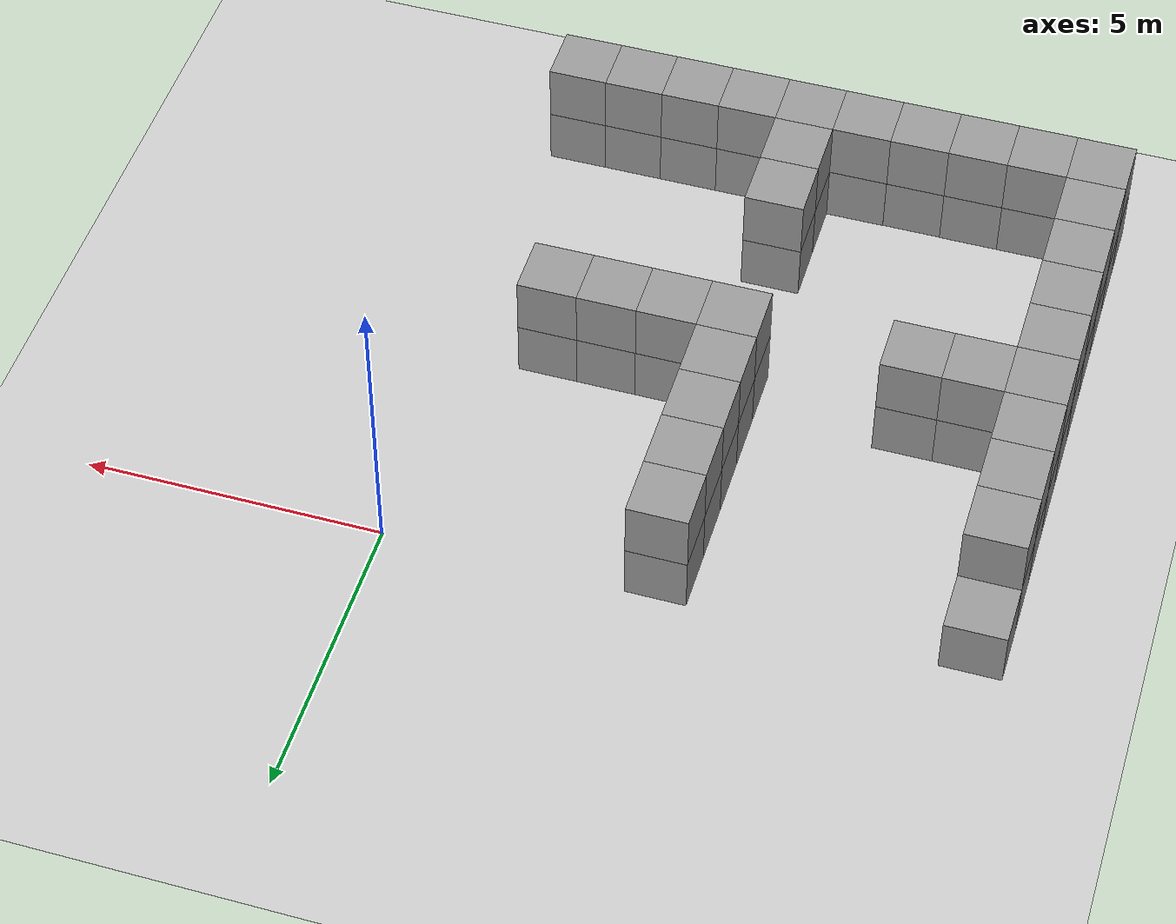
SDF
<sdf version="1.7">
 <world name="default">
  <model name="ground_plane">
   <static>1</static>
   <link name="link">
    <collision name="collision">
     <geometry><plane><normal>0 0 1</normal><size>100 100</size></plane></geometry>
     <surface>
      <contact><collide_bitmask>65535</collide_bitmask></contact>
      <friction><ode><mu>100</mu><mu2>50</mu2></ode></friction>
     </surface>
    </collision>
    <visual name="visual">
     <cast_shadows>0</cast_shadows>
     <geometry><plane><normal>0 0 1</normal><size>100 100</size></plane></geometry>
     <material>
      <script><uri>file://media/materials/scripts/gazebo.material</uri><name>Gazebo/Grey</name></script>
     </material>
    </visual>
   </link>
  </model>
  <model name="unit_box_clone_7_clone_18_clone_3_clone_clone_3_clone_5">
   <pose>-4.5 -0.5 0.5 0 -0 0</pose>
   <link name="link">
    <inertial>
     <mass>1</mass>
     <inertia>
      <ixx>0.166667</ixx>
      <ixy>0</ixy>
      <ixz>0</ixz>
      <iyy>0.166667</iyy>
      <iyz>0</iyz>
      <izz>0.166667</izz>
     </inertia>
    </inertial>
    <collision name="collision"><geometry><box><size>1 1 1</size></box></geometry></collision>
    <visual name="visual">
     <geometry><box><size>1 1 1</size></box></geometry>
     <material>
      <script><name>Gazebo/Grey</name><uri>file://media/materials/scripts/gazebo.material</uri></script>
     </material>
    </visual>
   </link>
  </model>
  <model name="unit_box_clone_7_clone_18_clone_3_clone_clone_3_clone_6">
   <pose>-4.5 -1.5 0.5 0 -0 0</pose>
   <link name="link">
    <inertial>
     <mass>1</mass>
     <inertia>
      <ixx>0.166667</ixx>
      <ixy>0</ixy>
      <ixz>0</ixz>
      <iyy>0.166667</iyy>
      <iyz>0</iyz>
      <izz>0.166667</izz>
     </inertia>
    </inertial>
    <collision name="collision"><geometry><box><size>1 1 1</size></box></geometry></collision>
    <visual name="visual">
     <geometry><box><size>1 1 1</size></box></geometry>
     <material>
      <script><name>Gazebo/Grey</name><uri>file://media/materials/scripts/gazebo.material</uri></script>
     </material>
    </visual>
   </link>
  </model>
  <model name="unit_box_clone_7_clone_18_clone_3_clone_clone_3_clone_7">
   <pose>-4.5 -2.5 0.5 0 -0 0</pose>
   <link name="link">
    <inertial>
     <mass>1</mass>
     <inertia>
      <ixx>0.166667</ixx>
      <ixy>0</ixy>
      <ixz>0</ixz>
      <iyy>0.166667</iyy>
      <iyz>0</iyz>
      <izz>0.166667</izz>
     </inertia>
    </inertial>
    <collision name="collision"><geometry><box><size>1 1 1</size></box></geometry></collision>
    <visual name="visual">
     <geometry><box><size>1 1 1</size></box></geometry>
     <material>
      <script><name>Gazebo/Grey</name><uri>file://media/materials/scripts/gazebo.material</uri></script>
     </material>
    </visual>
   </link>
  </model>
  <model name="unit_box_clone_7_clone_18_clone_3_clone_clone_3_clone_8">
   <pose>-4.5 -3.5 0.5 0 -0 0</pose>
   <link name="link">
    <inertial>
     <mass>1</mass>
     <inertia>
      <ixx>0.166667</ixx>
      <ixy>0</ixy>
      <ixz>0</ixz>
      <iyy>0.166667</iyy>
      <iyz>0</iyz>
      <izz>0.166667</izz>
     </inertia>
    </inertial>
    <collision name="collision"><geometry><box><size>1 1 1</size></box></geometry></collision>
    <visual name="visual">
     <geometry><box><size>1 1 1</size></box></geometry>
     <material>
      <script><name>Gazebo/Grey</name><uri>file://media/materials/scripts/gazebo.material</uri></script>
     </material>
    </visual>
   </link>
  </model>
  <model name="unit_box_clone_7_clone_18_clone_3_clone_clone_3_clone_9">
   <pose>-4.5 -4.5 0.5 0 -0 0</pose>
   <link name="link">
    <inertial>
     <mass>1</mass>
     <inertia>
      <ixx>0.166667</ixx>
      <ixy>0</ixy>
      <ixz>0</ixz>
      <iyy>0.166667</iyy>
      <iyz>0</iyz>
      <izz>0.166667</izz>
     </inertia>
    </inertial>
    <collision name="collision"><geometry><box><size>1 1 1</size></box></geometry></collision>
    <visual name="visual">
     <geometry><box><size>1 1 1</size></box></geometry>
     <material>
      <script><name>Gazebo/Grey</name><uri>file://media/materials/scripts/gazebo.material</uri></script>
     </material>
    </visual>
   </link>
  </model>
  <model name="unit_box_clone_7_clone_18_clone_3_clone_clone_3_clone_9_clone">
   <pose>-3.5 -4.5 0.5 0 -0 0</pose>
   <link name="link">
    <inertial>
     <mass>1</mass>
     <inertia>
      <ixx>0.166667</ixx>
      <ixy>0</ixy>
      <ixz>0</ixz>
      <iyy>0.166667</iyy>
      <iyz>0</iyz>
      <izz>0.166667</izz>
     </inertia>
    </inertial>
    <collision name="collision"><geometry><box><size>1 1 1</size></box></geometry></collision>
    <visual name="visual">
     <geometry><box><size>1 1 1</size></box></geometry>
     <material>
      <script><name>Gazebo/Grey</name><uri>file://media/materials/scripts/gazebo.material</uri></script>
     </material>
    </visual>
   </link>
  </model>
  <model name="unit_box_clone_7_clone_18_clone_3_clone_clone_3_clone_9_clone_0">
   <pose>-2.5 -4.5 0.5 0 -0 0</pose>
   <link name="link">
    <inertial>
     <mass>1</mass>
     <inertia>
      <ixx>0.166667</ixx>
      <ixy>0</ixy>
      <ixz>0</ixz>
      <iyy>0.166667</iyy>
      <iyz>0</iyz>
      <izz>0.166667</izz>
     </inertia>
    </inertial>
    <collision name="collision"><geometry><box><size>1 1 1</size></box></geometry></collision>
    <visual name="visual">
     <geometry><box><size>1 1 1</size></box></geometry>
     <material>
      <script><name>Gazebo/Grey</name><uri>file://media/materials/scripts/gazebo.material</uri></script>
     </material>
    </visual>
   </link>
  </model>
  <model name="unit_box_clone_7_clone_18_clone_3_clone_clone_3_clone_9_clone_1">
   <pose>-1.5 -4.5 0.5 0 -0 0</pose>
   <link name="link">
    <inertial>
     <mass>1</mass>
     <inertia>
      <ixx>0.166667</ixx>
      <ixy>0</ixy>
      <ixz>0</ixz>
      <iyy>0.166667</iyy>
      <iyz>0</iyz>
      <izz>0.166667</izz>
     </inertia>
    </inertial>
    <collision name="collision"><geometry><box><size>1 1 1</size></box></geometry></collision>
    <visual name="visual">
     <geometry><box><size>1 1 1</size></box></geometry>
     <material>
      <script><name>Gazebo/Grey</name><uri>file://media/materials/scripts/gazebo.material</uri></script>
     </material>
    </visual>
   </link>
  </model>
  <model name="unit_box_clone_0_clone_clone_26_clone_2_clone_1_clone_0_clone_5">
   <pose>-4.5 -0.5 1.5 0 -0 0</pose>
   <link name="link">
    <inertial>
     <mass>1</mass>
     <inertia>
      <ixx>0.166667</ixx>
      <ixy>0</ixy>
      <ixz>0</ixz>
      <iyy>0.166667</iyy>
      <iyz>0</iyz>
      <izz>0.166667</izz>
     </inertia>
    </inertial>
    <collision name="collision"><geometry><box><size>1 1 1</size></box></geometry></collision>
    <visual name="visual">
     <geometry><box><size>1 1 1</size></box></geometry>
     <material>
      <script><name>Gazebo/Grey</name><uri>file://media/materials/scripts/gazebo.material</uri></script>
     </material>
    </visual>
   </link>
  </model>
  <model name="unit_box_clone_0_clone_clone_26_clone_2_clone_1_clone_0_clone_6">
   <pose>-4.5 -1.5 1.5 0 -0 0</pose>
   <link name="link">
    <inertial>
     <mass>1</mass>
     <inertia>
      <ixx>0.166667</ixx>
      <ixy>0</ixy>
      <ixz>0</ixz>
      <iyy>0.166667</iyy>
      <iyz>0</iyz>
      <izz>0.166667</izz>
     </inertia>
    </inertial>
    <collision name="collision"><geometry><box><size>1 1 1</size></box></geometry></collision>
    <visual name="visual">
     <geometry><box><size>1 1 1</size></box></geometry>
     <material>
      <script><name>Gazebo/Grey</name><uri>file://media/materials/scripts/gazebo.material</uri></script>
     </material>
    </visual>
   </link>
  </model>
  <model name="unit_box_clone_0_clone_clone_26_clone_2_clone_1_clone_0_clone_7">
   <pose>-4.5 -2.5 1.5 0 -0 0</pose>
   <link name="link">
    <inertial>
     <mass>1</mass>
     <inertia>
      <ixx>0.166667</ixx>
      <ixy>0</ixy>
      <ixz>0</ixz>
      <iyy>0.166667</iyy>
      <iyz>0</iyz>
      <izz>0.166667</izz>
     </inertia>
    </inertial>
    <collision name="collision"><geometry><box><size>1 1 1</size></box></geometry></collision>
    <visual name="visual">
     <geometry><box><size>1 1 1</size></box></geometry>
     <material>
      <script><name>Gazebo/Grey</name><uri>file://media/materials/scripts/gazebo.material</uri></script>
     </material>
    </visual>
   </link>
  </model>
  <model name="unit_box_clone_0_clone_clone_26_clone_2_clone_1_clone_0_clone_8">
   <pose>-4.5 -3.5 1.5 0 -0 0</pose>
   <link name="link">
    <inertial>
     <mass>1</mass>
     <inertia>
      <ixx>0.166667</ixx>
      <ixy>0</ixy>
      <ixz>0</ixz>
      <iyy>0.166667</iyy>
      <iyz>0</iyz>
      <izz>0.166667</izz>
     </inertia>
    </inertial>
    <collision name="collision"><geometry><box><size>1 1 1</size></box></geometry></collision>
    <visual name="visual">
     <geometry><box><size>1 1 1</size></box></geometry>
     <material>
      <script><name>Gazebo/Grey</name><uri>file://media/materials/scripts/gazebo.material</uri></script>
     </material>
    </visual>
   </link>
  </model>
  <model name="unit_box_clone_0_clone_clone_26_clone_2_clone_1_clone_0_clone_9">
   <pose>-4.5 -4.5 1.5 0 -0 0</pose>
   <link name="link">
    <inertial>
     <mass>1</mass>
     <inertia>
      <ixx>0.166667</ixx>
      <ixy>0</ixy>
      <ixz>0</ixz>
      <iyy>0.166667</iyy>
      <iyz>0</iyz>
      <izz>0.166667</izz>
     </inertia>
    </inertial>
    <collision name="collision"><geometry><box><size>1 1 1</size></box></geometry></collision>
    <visual name="visual">
     <geometry><box><size>1 1 1</size></box></geometry>
     <material>
      <script><name>Gazebo/Grey</name><uri>file://media/materials/scripts/gazebo.material</uri></script>
     </material>
    </visual>
   </link>
  </model>
  <model name="unit_box_clone_0_clone_clone_26_clone_2_clone_1_clone_0_clone_10">
   <pose>-3.5 -4.5 1.5 0 -0 0</pose>
   <link name="link">
    <inertial>
     <mass>1</mass>
     <inertia>
      <ixx>0.166667</ixx>
      <ixy>0</ixy>
      <ixz>0</ixz>
      <iyy>0.166667</iyy>
      <iyz>0</iyz>
      <izz>0.166667</izz>
     </inertia>
    </inertial>
    <collision name="collision"><geometry><box><size>1 1 1</size></box></geometry></collision>
    <visual name="visual">
     <geometry><box><size>1 1 1</size></box></geometry>
     <material>
      <script><name>Gazebo/Grey</name><uri>file://media/materials/scripts/gazebo.material</uri></script>
     </material>
    </visual>
   </link>
  </model>
  <model name="unit_box_clone_0_clone_clone_26_clone_2_clone_1_clone_0_clone_11">
   <pose>-2.5 -4.5 1.5 0 -0 0</pose>
   <link name="link">
    <inertial>
     <mass>1</mass>
     <inertia>
      <ixx>0.166667</ixx>
      <ixy>0</ixy>
      <ixz>0</ixz>
      <iyy>0.166667</iyy>
      <iyz>0</iyz>
      <izz>0.166667</izz>
     </inertia>
    </inertial>
    <collision name="collision"><geometry><box><size>1 1 1</size></box></geometry></collision>
    <visual name="visual">
     <geometry><box><size>1 1 1</size></box></geometry>
     <material>
      <script><name>Gazebo/Grey</name><uri>file://media/materials/scripts/gazebo.material</uri></script>
     </material>
    </visual>
   </link>
  </model>
  <model name="unit_box_clone_0_clone_clone_26_clone_2_clone_1_clone_0_clone_12">
   <pose>-1.5 -4.5 1.5 0 -0 0</pose>
   <link name="link">
    <inertial>
     <mass>1</mass>
     <inertia>
      <ixx>0.166667</ixx>
      <ixy>0</ixy>
      <ixz>0</ixz>
      <iyy>0.166667</iyy>
      <iyz>0</iyz>
      <izz>0.166667</izz>
     </inertia>
    </inertial>
    <collision name="collision"><geometry><box><size>1 1 1</size></box></geometry></collision>
    <visual name="visual">
     <geometry><box><size>1 1 1</size></box></geometry>
     <material>
      <script><name>Gazebo/Grey</name><uri>file://media/materials/scripts/gazebo.material</uri></script>
     </material>
    </visual>
   </link>
  </model>
  <model name="unit_box_clone_7_clone_9_clone_15">
   <pose>-9.5 -0.5 0.5 0 -0 0</pose>
   <link name="link">
    <inertial>
     <mass>1</mass>
     <inertia>
      <ixx>0.166667</ixx>
      <ixy>0</ixy>
      <ixz>0</ixz>
      <iyy>0.166667</iyy>
      <iyz>0</iyz>
      <izz>0.166667</izz>
     </inertia>
    </inertial>
    <collision name="collision"><geometry><box><size>1 1 1</size></box></geometry></collision>
    <visual name="visual">
     <geometry><box><size>1 1 1</size></box></geometry>
     <material>
      <script><name>Gazebo/Grey</name><uri>file://media/materials/scripts/gazebo.material</uri></script>
     </material>
    </visual>
   </link>
  </model>
  <model name="unit_box_clone_7_clone_9_clone_16">
   <pose>-9.5 -1.5 0.5 0 -0 0</pose>
   <link name="link">
    <inertial>
     <mass>1</mass>
     <inertia>
      <ixx>0.166667</ixx>
      <ixy>0</ixy>
      <ixz>0</ixz>
      <iyy>0.166667</iyy>
      <iyz>0</iyz>
      <izz>0.166667</izz>
     </inertia>
    </inertial>
    <collision name="collision"><geometry><box><size>1 1 1</size></box></geometry></collision>
    <visual name="visual">
     <geometry><box><size>1 1 1</size></box></geometry>
     <material>
      <script><name>Gazebo/Grey</name><uri>file://media/materials/scripts/gazebo.material</uri></script>
     </material>
    </visual>
   </link>
  </model>
  <model name="unit_box_clone_7_clone_9_clone_17">
   <pose>-9.5 -2.5 0.5 0 -0 0</pose>
   <link name="link">
    <inertial>
     <mass>1</mass>
     <inertia>
      <ixx>0.166667</ixx>
      <ixy>0</ixy>
      <ixz>0</ixz>
      <iyy>0.166667</iyy>
      <iyz>0</iyz>
      <izz>0.166667</izz>
     </inertia>
    </inertial>
    <collision name="collision"><geometry><box><size>1 1 1</size></box></geometry></collision>
    <visual name="visual">
     <geometry><box><size>1 1 1</size></box></geometry>
     <material>
      <script><name>Gazebo/Grey</name><uri>file://media/materials/scripts/gazebo.material</uri></script>
     </material>
    </visual>
   </link>
  </model>
  <model name="unit_box_clone_7_clone_9_clone_18">
   <pose>-9.5 -3.5 0.5 0 -0 0</pose>
   <link name="link">
    <inertial>
     <mass>1</mass>
     <inertia>
      <ixx>0.166667</ixx>
      <ixy>0</ixy>
      <ixz>0</ixz>
      <iyy>0.166667</iyy>
      <iyz>0</iyz>
      <izz>0.166667</izz>
     </inertia>
    </inertial>
    <collision name="collision"><geometry><box><size>1 1 1</size></box></geometry></collision>
    <visual name="visual">
     <geometry><box><size>1 1 1</size></box></geometry>
     <material>
      <script><name>Gazebo/Grey</name><uri>file://media/materials/scripts/gazebo.material</uri></script>
     </material>
    </visual>
   </link>
  </model>
  <model name="unit_box_clone_7_clone_9_clone_19">
   <pose>-9.5 -4.5 0.5 0 -0 0</pose>
   <link name="link">
    <inertial>
     <mass>1</mass>
     <inertia>
      <ixx>0.166667</ixx>
      <ixy>0</ixy>
      <ixz>0</ixz>
      <iyy>0.166667</iyy>
      <iyz>0</iyz>
      <izz>0.166667</izz>
     </inertia>
    </inertial>
    <collision name="collision"><geometry><box><size>1 1 1</size></box></geometry></collision>
    <visual name="visual">
     <geometry><box><size>1 1 1</size></box></geometry>
     <material>
      <script><name>Gazebo/Grey</name><uri>file://media/materials/scripts/gazebo.material</uri></script>
     </material>
    </visual>
   </link>
  </model>
  <model name="unit_box_clone_7_clone_9_clone_20">
   <pose>-9.5 -5.5 0.5 0 -0 0</pose>
   <link name="link">
    <inertial>
     <mass>1</mass>
     <inertia>
      <ixx>0.166667</ixx>
      <ixy>0</ixy>
      <ixz>0</ixz>
      <iyy>0.166667</iyy>
      <iyz>0</iyz>
      <izz>0.166667</izz>
     </inertia>
    </inertial>
    <collision name="collision"><geometry><box><size>1 1 1</size></box></geometry></collision>
    <visual name="visual">
     <geometry><box><size>1 1 1</size></box></geometry>
     <material>
      <script><name>Gazebo/Grey</name><uri>file://media/materials/scripts/gazebo.material</uri></script>
     </material>
    </visual>
   </link>
  </model>
  <model name="unit_box_clone_7_clone_9_clone_21">
   <pose>-8.5 -4.5 0.5 0 -0 0</pose>
   <link name="link">
    <inertial>
     <mass>1</mass>
     <inertia>
      <ixx>0.166667</ixx>
      <ixy>0</ixy>
      <ixz>0</ixz>
      <iyy>0.166667</iyy>
      <iyz>0</iyz>
      <izz>0.166667</izz>
     </inertia>
    </inertial>
    <collision name="collision"><geometry><box><size>1 1 1</size></box></geometry></collision>
    <visual name="visual">
     <geometry><box><size>1 1 1</size></box></geometry>
     <material>
      <script><name>Gazebo/Grey</name><uri>file://media/materials/scripts/gazebo.material</uri></script>
     </material>
    </visual>
   </link>
  </model>
  <model name="unit_box_clone_7_clone_9_clone_22">
   <pose>-7.5 -4.5 0.5 0 -0 0</pose>
   <link name="link">
    <inertial>
     <mass>1</mass>
     <inertia>
      <ixx>0.166667</ixx>
      <ixy>0</ixy>
      <ixz>0</ixz>
      <iyy>0.166667</iyy>
      <iyz>0</iyz>
      <izz>0.166667</izz>
     </inertia>
    </inertial>
    <collision name="collision"><geometry><box><size>1 1 1</size></box></geometry></collision>
    <visual name="visual">
     <geometry><box><size>1 1 1</size></box></geometry>
     <material>
      <script><name>Gazebo/Grey</name><uri>file://media/materials/scripts/gazebo.material</uri></script>
     </material>
    </visual>
   </link>
  </model>
  <model name="unit_box_clone_7_clone_9_clone_24">
   <pose>-9.5 -6.5 0.5 0 -0 0</pose>
   <link name="link">
    <inertial>
     <mass>1</mass>
     <inertia>
      <ixx>0.166667</ixx>
      <ixy>0</ixy>
      <ixz>0</ixz>
      <iyy>0.166667</iyy>
      <iyz>0</iyz>
      <izz>0.166667</izz>
     </inertia>
    </inertial>
    <collision name="collision"><geometry><box><size>1 1 1</size></box></geometry></collision>
    <visual name="visual">
     <geometry><box><size>1 1 1</size></box></geometry>
     <material>
      <script><name>Gazebo/Grey</name><uri>file://media/materials/scripts/gazebo.material</uri></script>
     </material>
    </visual>
   </link>
  </model>
  <model name="unit_box_clone_7_clone_9_clone_25">
   <pose>-9.5 -7.5 0.5 0 -0 0</pose>
   <link name="link">
    <inertial>
     <mass>1</mass>
     <inertia>
      <ixx>0.166667</ixx>
      <ixy>0</ixy>
      <ixz>0</ixz>
      <iyy>0.166667</iyy>
      <iyz>0</iyz>
      <izz>0.166667</izz>
     </inertia>
    </inertial>
    <collision name="collision"><geometry><box><size>1 1 1</size></box></geometry></collision>
    <visual name="visual">
     <geometry><box><size>1 1 1</size></box></geometry>
     <material>
      <script><name>Gazebo/Grey</name><uri>file://media/materials/scripts/gazebo.material</uri></script>
     </material>
    </visual>
   </link>
  </model>
  <model name="unit_box_clone_7_clone_9_clone_26">
   <pose>-9.5 -8.5 0.5 0 -0 0</pose>
   <link name="link">
    <inertial>
     <mass>1</mass>
     <inertia>
      <ixx>0.166667</ixx>
      <ixy>0</ixy>
      <ixz>0</ixz>
      <iyy>0.166667</iyy>
      <iyz>0</iyz>
      <izz>0.166667</izz>
     </inertia>
    </inertial>
    <collision name="collision"><geometry><box><size>1 1 1</size></box></geometry></collision>
    <visual name="visual">
     <geometry><box><size>1 1 1</size></box></geometry>
     <material>
      <script><name>Gazebo/Grey</name><uri>file://media/materials/scripts/gazebo.material</uri></script>
     </material>
    </visual>
   </link>
  </model>
  <model name="unit_box_clone_7_clone_9_clone_27">
   <pose>-9.5 -9.5 0.5 0 -0 0</pose>
   <link name="link">
    <inertial>
     <mass>1</mass>
     <inertia>
      <ixx>0.166667</ixx>
      <ixy>0</ixy>
      <ixz>0</ixz>
      <iyy>0.166667</iyy>
      <iyz>0</iyz>
      <izz>0.166667</izz>
     </inertia>
    </inertial>
    <collision name="collision"><geometry><box><size>1 1 1</size></box></geometry></collision>
    <visual name="visual">
     <geometry><box><size>1 1 1</size></box></geometry>
     <material>
      <script><name>Gazebo/Grey</name><uri>file://media/materials/scripts/gazebo.material</uri></script>
     </material>
    </visual>
   </link>
  </model>
  <model name="unit_box_clone_7_clone_9_clone_28">
   <pose>-8.5 -9.5 0.5 0 -0 0</pose>
   <link name="link">
    <inertial>
     <mass>1</mass>
     <inertia>
      <ixx>0.166667</ixx>
      <ixy>0</ixy>
      <ixz>0</ixz>
      <iyy>0.166667</iyy>
      <iyz>0</iyz>
      <izz>0.166667</izz>
     </inertia>
    </inertial>
    <collision name="collision"><geometry><box><size>1 1 1</size></box></geometry></collision>
    <visual name="visual">
     <geometry><box><size>1 1 1</size></box></geometry>
     <material>
      <script><name>Gazebo/Grey</name><uri>file://media/materials/scripts/gazebo.material</uri></script>
     </material>
    </visual>
   </link>
  </model>
  <model name="unit_box_clone_7_clone_9_clone_29">
   <pose>-7.5 -9.5 0.5 0 -0 0</pose>
   <link name="link">
    <inertial>
     <mass>1</mass>
     <inertia>
      <ixx>0.166667</ixx>
      <ixy>0</ixy>
      <ixz>0</ixz>
      <iyy>0.166667</iyy>
      <iyz>0</iyz>
      <izz>0.166667</izz>
     </inertia>
    </inertial>
    <collision name="collision"><geometry><box><size>1 1 1</size></box></geometry></collision>
    <visual name="visual">
     <geometry><box><size>1 1 1</size></box></geometry>
     <material>
      <script><name>Gazebo/Grey</name><uri>file://media/materials/scripts/gazebo.material</uri></script>
     </material>
    </visual>
   </link>
  </model>
  <model name="unit_box_clone_7_clone_9_clone_30">
   <pose>-6.5 -9.5067 0.5 0 -0 0</pose>
   <link name="link">
    <inertial>
     <mass>1</mass>
     <inertia>
      <ixx>0.166667</ixx>
      <ixy>0</ixy>
      <ixz>0</ixz>
      <iyy>0.166667</iyy>
      <iyz>0</iyz>
      <izz>0.166667</izz>
     </inertia>
    </inertial>
    <collision name="collision"><geometry><box><size>1 1 1</size></box></geometry></collision>
    <visual name="visual">
     <geometry><box><size>1 1 1</size></box></geometry>
     <material>
      <script><name>Gazebo/Grey</name><uri>file://media/materials/scripts/gazebo.material</uri></script>
     </material>
    </visual>
   </link>
  </model>
  <model name="unit_box_clone_7_clone_9_clone_31">
   <pose>-5.5 -9.5 0.5 0 -0 0</pose>
   <link name="link">
    <inertial>
     <mass>1</mass>
     <inertia>
      <ixx>0.166667</ixx>
      <ixy>0</ixy>
      <ixz>0</ixz>
      <iyy>0.166667</iyy>
      <iyz>0</iyz>
      <izz>0.166667</izz>
     </inertia>
    </inertial>
    <collision name="collision"><geometry><box><size>1 1 1</size></box></geometry></collision>
    <visual name="visual">
     <geometry><box><size>1 1 1</size></box></geometry>
     <material>
      <script><name>Gazebo/Grey</name><uri>file://media/materials/scripts/gazebo.material</uri></script>
     </material>
    </visual>
   </link>
  </model>
  <model name="unit_box_clone_7_clone_9_clone_34">
   <pose>-4.5 -8.5 0.5 0 -0 0</pose>
   <link name="link">
    <inertial>
     <mass>1</mass>
     <inertia>
      <ixx>0.166667</ixx>
      <ixy>0</ixy>
      <ixz>0</ixz>
      <iyy>0.166667</iyy>
      <iyz>0</iyz>
      <izz>0.166667</izz>
     </inertia>
    </inertial>
    <collision name="collision"><geometry><box><size>1 1 1</size></box></geometry></collision>
    <visual name="visual">
     <geometry><box><size>1 1 1</size></box></geometry>
     <material>
      <script><name>Gazebo/Grey</name><uri>file://media/materials/scripts/gazebo.material</uri></script>
     </material>
    </visual>
   </link>
  </model>
  <model name="unit_box_clone_7_clone_9_clone_35">
   <pose>-4.5 -7.5 0.5 0 -0 0</pose>
   <link name="link">
    <inertial>
     <mass>1</mass>
     <inertia>
      <ixx>0.166667</ixx>
      <ixy>0</ixy>
      <ixz>0</ixz>
      <iyy>0.166667</iyy>
      <iyz>0</iyz>
      <izz>0.166667</izz>
     </inertia>
    </inertial>
    <collision name="collision"><geometry><box><size>1 1 1</size></box></geometry></collision>
    <visual name="visual">
     <geometry><box><size>1 1 1</size></box></geometry>
     <material>
      <script><name>Gazebo/Grey</name><uri>file://media/materials/scripts/gazebo.material</uri></script>
     </material>
    </visual>
   </link>
  </model>
  <model name="unit_box_clone_7_clone_9_clone_36">
   <pose>-4.5 -9.5 0.5 0 -0 0</pose>
   <link name="link">
    <inertial>
     <mass>1</mass>
     <inertia>
      <ixx>0.166667</ixx>
      <ixy>0</ixy>
      <ixz>0</ixz>
      <iyy>0.166667</iyy>
      <iyz>0</iyz>
      <izz>0.166667</izz>
     </inertia>
    </inertial>
    <collision name="collision"><geometry><box><size>1 1 1</size></box></geometry></collision>
    <visual name="visual">
     <geometry><box><size>1 1 1</size></box></geometry>
     <material>
      <script><name>Gazebo/Grey</name><uri>file://media/materials/scripts/gazebo.material</uri></script>
     </material>
    </visual>
   </link>
  </model>
  <model name="unit_box_clone_7_clone_9_clone_34_clone">
   <pose>-3.5 -9.5 0.5 0 -0 0</pose>
   <link name="link">
    <inertial>
     <mass>1</mass>
     <inertia>
      <ixx>0.166667</ixx>
      <ixy>0</ixy>
      <ixz>0</ixz>
      <iyy>0.166667</iyy>
      <iyz>0</iyz>
      <izz>0.166667</izz>
     </inertia>
    </inertial>
    <collision name="collision"><geometry><box><size>1 1 1</size></box></geometry></collision>
    <visual name="visual">
     <geometry><box><size>1 1 1</size></box></geometry>
     <material>
      <script><name>Gazebo/Grey</name><uri>file://media/materials/scripts/gazebo.material</uri></script>
     </material>
    </visual>
   </link>
  </model>
  <model name="unit_box_clone_7_clone_9_clone_34_clone_0">
   <pose>-2.5 -9.5 0.5 0 -0 0</pose>
   <link name="link">
    <inertial>
     <mass>1</mass>
     <inertia>
      <ixx>0.166667</ixx>
      <ixy>0</ixy>
      <ixz>0</ixz>
      <iyy>0.166667</iyy>
      <iyz>0</iyz>
      <izz>0.166667</izz>
     </inertia>
    </inertial>
    <collision name="collision"><geometry><box><size>1 1 1</size></box></geometry></collision>
    <visual name="visual">
     <geometry><box><size>1 1 1</size></box></geometry>
     <material>
      <script><name>Gazebo/Grey</name><uri>file://media/materials/scripts/gazebo.material</uri></script>
     </material>
    </visual>
   </link>
  </model>
  <model name="unit_box_clone_7_clone_9_clone_34_clone_1">
   <pose>-1.5 -9.5 0.5 0 -0 0</pose>
   <link name="link">
    <inertial>
     <mass>1</mass>
     <inertia>
      <ixx>0.166667</ixx>
      <ixy>0</ixy>
      <ixz>0</ixz>
      <iyy>0.166667</iyy>
      <iyz>0</iyz>
      <izz>0.166667</izz>
     </inertia>
    </inertial>
    <collision name="collision"><geometry><box><size>1 1 1</size></box></geometry></collision>
    <visual name="visual">
     <geometry><box><size>1 1 1</size></box></geometry>
     <material>
      <script><name>Gazebo/Grey</name><uri>file://media/materials/scripts/gazebo.material</uri></script>
     </material>
    </visual>
   </link>
  </model>
  <model name="unit_box_clone_7_clone_9_clone_34_clone_2">
   <pose>-0.5 -9.5 0.5 0 -0 0</pose>
   <link name="link">
    <inertial>
     <mass>1</mass>
     <inertia>
      <ixx>0.166667</ixx>
      <ixy>0</ixy>
      <ixz>0</ixz>
      <iyy>0.166667</iyy>
      <iyz>0</iyz>
      <izz>0.166667</izz>
     </inertia>
    </inertial>
    <collision name="collision"><geometry><box><size>1 1 1</size></box></geometry></collision>
    <visual name="visual">
     <geometry><box><size>1 1 1</size></box></geometry>
     <material>
      <script><name>Gazebo/Grey</name><uri>file://media/materials/scripts/gazebo.material</uri></script>
     </material>
    </visual>
   </link>
  </model>
  <model name="unit_box_clone_0_clone_clone_26_clone_18_clone_16">
   <pose>-9.5 -1.5 1.5 0 -0 0</pose>
   <link name="link">
    <inertial>
     <mass>1</mass>
     <inertia>
      <ixx>0.166667</ixx>
      <ixy>0</ixy>
      <ixz>0</ixz>
      <iyy>0.166667</iyy>
      <iyz>0</iyz>
      <izz>0.166667</izz>
     </inertia>
    </inertial>
    <collision name="collision"><geometry><box><size>1 1 1</size></box></geometry></collision>
    <visual name="visual">
     <geometry><box><size>1 1 1</size></box></geometry>
     <material>
      <script><name>Gazebo/Grey</name><uri>file://media/materials/scripts/gazebo.material</uri></script>
     </material>
    </visual>
   </link>
  </model>
  <model name="unit_box_clone_0_clone_clone_26_clone_18_clone_17">
   <pose>-9.5 -2.5 1.5 0 -0 0</pose>
   <link name="link">
    <inertial>
     <mass>1</mass>
     <inertia>
      <ixx>0.166667</ixx>
      <ixy>0</ixy>
      <ixz>0</ixz>
      <iyy>0.166667</iyy>
      <iyz>0</iyz>
      <izz>0.166667</izz>
     </inertia>
    </inertial>
    <collision name="collision"><geometry><box><size>1 1 1</size></box></geometry></collision>
    <visual name="visual">
     <geometry><box><size>1 1 1</size></box></geometry>
     <material>
      <script><name>Gazebo/Grey</name><uri>file://media/materials/scripts/gazebo.material</uri></script>
     </material>
    </visual>
   </link>
  </model>
  <model name="unit_box_clone_0_clone_clone_26_clone_18_clone_18">
   <pose>-9.5 -3.5 1.5 0 -0 0</pose>
   <link name="link">
    <inertial>
     <mass>1</mass>
     <inertia>
      <ixx>0.166667</ixx>
      <ixy>0</ixy>
      <ixz>0</ixz>
      <iyy>0.166667</iyy>
      <iyz>0</iyz>
      <izz>0.166667</izz>
     </inertia>
    </inertial>
    <collision name="collision"><geometry><box><size>1 1 1</size></box></geometry></collision>
    <visual name="visual">
     <geometry><box><size>1 1 1</size></box></geometry>
     <material>
      <script><name>Gazebo/Grey</name><uri>file://media/materials/scripts/gazebo.material</uri></script>
     </material>
    </visual>
   </link>
  </model>
  <model name="unit_box_clone_0_clone_clone_26_clone_18_clone_19">
   <pose>-9.5 -4.5 1.5 0 -0 0</pose>
   <link name="link">
    <inertial>
     <mass>1</mass>
     <inertia>
      <ixx>0.166667</ixx>
      <ixy>0</ixy>
      <ixz>0</ixz>
      <iyy>0.166667</iyy>
      <iyz>0</iyz>
      <izz>0.166667</izz>
     </inertia>
    </inertial>
    <collision name="collision"><geometry><box><size>1 1 1</size></box></geometry></collision>
    <visual name="visual">
     <geometry><box><size>1 1 1</size></box></geometry>
     <material>
      <script><name>Gazebo/Grey</name><uri>file://media/materials/scripts/gazebo.material</uri></script>
     </material>
    </visual>
   </link>
  </model>
  <model name="unit_box_clone_0_clone_clone_26_clone_18_clone_20">
   <pose>-8.5 -4.5 1.5 0 -0 0</pose>
   <link name="link">
    <inertial>
     <mass>1</mass>
     <inertia>
      <ixx>0.166667</ixx>
      <ixy>0</ixy>
      <ixz>0</ixz>
      <iyy>0.166667</iyy>
      <iyz>0</iyz>
      <izz>0.166667</izz>
     </inertia>
    </inertial>
    <collision name="collision"><geometry><box><size>1 1 1</size></box></geometry></collision>
    <visual name="visual">
     <geometry><box><size>1 1 1</size></box></geometry>
     <material>
      <script><name>Gazebo/Grey</name><uri>file://media/materials/scripts/gazebo.material</uri></script>
     </material>
    </visual>
   </link>
  </model>
  <model name="unit_box_clone_0_clone_clone_26_clone_18_clone_21">
   <pose>-7.5 -4.5 1.5 0 -0 0</pose>
   <link name="link">
    <inertial>
     <mass>1</mass>
     <inertia>
      <ixx>0.166667</ixx>
      <ixy>0</ixy>
      <ixz>0</ixz>
      <iyy>0.166667</iyy>
      <iyz>0</iyz>
      <izz>0.166667</izz>
     </inertia>
    </inertial>
    <collision name="collision"><geometry><box><size>1 1 1</size></box></geometry></collision>
    <visual name="visual">
     <geometry><box><size>1 1 1</size></box></geometry>
     <material>
      <script><name>Gazebo/Grey</name><uri>file://media/materials/scripts/gazebo.material</uri></script>
     </material>
    </visual>
   </link>
  </model>
  <model name="unit_box_clone_0_clone_clone_26_clone_18_clone_22">
   <pose>-9.5 -5.5 1.5 0 -0 0</pose>
   <link name="link">
    <inertial>
     <mass>1</mass>
     <inertia>
      <ixx>0.166667</ixx>
      <ixy>0</ixy>
      <ixz>0</ixz>
      <iyy>0.166667</iyy>
      <iyz>0</iyz>
      <izz>0.166667</izz>
     </inertia>
    </inertial>
    <collision name="collision"><geometry><box><size>1 1 1</size></box></geometry></collision>
    <visual name="visual">
     <geometry><box><size>1 1 1</size></box></geometry>
     <material>
      <script><name>Gazebo/Grey</name><uri>file://media/materials/scripts/gazebo.material</uri></script>
     </material>
    </visual>
   </link>
  </model>
  <model name="unit_box_clone_0_clone_clone_26_clone_18_clone_23">
   <pose>-9.5 -6.5 1.5 0 -0 0</pose>
   <link name="link">
    <inertial>
     <mass>1</mass>
     <inertia>
      <ixx>0.166667</ixx>
      <ixy>0</ixy>
      <ixz>0</ixz>
      <iyy>0.166667</iyy>
      <iyz>0</iyz>
      <izz>0.166667</izz>
     </inertia>
    </inertial>
    <collision name="collision"><geometry><box><size>1 1 1</size></box></geometry></collision>
    <visual name="visual">
     <geometry><box><size>1 1 1</size></box></geometry>
     <material>
      <script><name>Gazebo/Grey</name><uri>file://media/materials/scripts/gazebo.material</uri></script>
     </material>
    </visual>
   </link>
  </model>
  <model name="unit_box_clone_0_clone_clone_26_clone_18_clone_24">
   <pose>-9.5 -7.5 1.5 0 -0 0</pose>
   <link name="link">
    <inertial>
     <mass>1</mass>
     <inertia>
      <ixx>0.166667</ixx>
      <ixy>0</ixy>
      <ixz>0</ixz>
      <iyy>0.166667</iyy>
      <iyz>0</iyz>
      <izz>0.166667</izz>
     </inertia>
    </inertial>
    <collision name="collision"><geometry><box><size>1 1 1</size></box></geometry></collision>
    <visual name="visual">
     <geometry><box><size>1 1 1</size></box></geometry>
     <material>
      <script><name>Gazebo/Grey</name><uri>file://media/materials/scripts/gazebo.material</uri></script>
     </material>
    </visual>
   </link>
  </model>
  <model name="unit_box_clone_0_clone_clone_26_clone_18_clone_25">
   <pose>-9.5 -8.5 1.5 0 -0 0</pose>
   <link name="link">
    <inertial>
     <mass>1</mass>
     <inertia>
      <ixx>0.166667</ixx>
      <ixy>0</ixy>
      <ixz>0</ixz>
      <iyy>0.166667</iyy>
      <iyz>0</iyz>
      <izz>0.166667</izz>
     </inertia>
    </inertial>
    <collision name="collision"><geometry><box><size>1 1 1</size></box></geometry></collision>
    <visual name="visual">
     <geometry><box><size>1 1 1</size></box></geometry>
     <material>
      <script><name>Gazebo/Grey</name><uri>file://media/materials/scripts/gazebo.material</uri></script>
     </material>
    </visual>
   </link>
  </model>
  <model name="unit_box_clone_0_clone_clone_26_clone_18_clone_26">
   <pose>-9.5 -9.5 1.5 0 -0 0</pose>
   <link name="link">
    <inertial>
     <mass>1</mass>
     <inertia>
      <ixx>0.166667</ixx>
      <ixy>0</ixy>
      <ixz>0</ixz>
      <iyy>0.166667</iyy>
      <iyz>0</iyz>
      <izz>0.166667</izz>
     </inertia>
    </inertial>
    <collision name="collision"><geometry><box><size>1 1 1</size></box></geometry></collision>
    <visual name="visual">
     <geometry><box><size>1 1 1</size></box></geometry>
     <material>
      <script><name>Gazebo/Grey</name><uri>file://media/materials/scripts/gazebo.material</uri></script>
     </material>
    </visual>
   </link>
  </model>
  <model name="unit_box_clone_0_clone_clone_26_clone_18_clone_27">
   <pose>-8.5 -9.5 1.5 0 -0 0</pose>
   <link name="link">
    <inertial>
     <mass>1</mass>
     <inertia>
      <ixx>0.166667</ixx>
      <ixy>0</ixy>
      <ixz>0</ixz>
      <iyy>0.166667</iyy>
      <iyz>0</iyz>
      <izz>0.166667</izz>
     </inertia>
    </inertial>
    <collision name="collision"><geometry><box><size>1 1 1</size></box></geometry></collision>
    <visual name="visual">
     <geometry><box><size>1 1 1</size></box></geometry>
     <material>
      <script><name>Gazebo/Grey</name><uri>file://media/materials/scripts/gazebo.material</uri></script>
     </material>
    </visual>
   </link>
  </model>
  <model name="unit_box_clone_0_clone_clone_26_clone_18_clone_28">
   <pose>-7.5 -9.5 1.5 0 -0 0</pose>
   <link name="link">
    <inertial>
     <mass>1</mass>
     <inertia>
      <ixx>0.166667</ixx>
      <ixy>0</ixy>
      <ixz>0</ixz>
      <iyy>0.166667</iyy>
      <iyz>0</iyz>
      <izz>0.166667</izz>
     </inertia>
    </inertial>
    <collision name="collision"><geometry><box><size>1 1 1</size></box></geometry></collision>
    <visual name="visual">
     <geometry><box><size>1 1 1</size></box></geometry>
     <material>
      <script><name>Gazebo/Grey</name><uri>file://media/materials/scripts/gazebo.material</uri></script>
     </material>
    </visual>
   </link>
  </model>
  <model name="unit_box_clone_0_clone_clone_26_clone_18_clone_29">
   <pose>-6.5 -9.5 1.5 0 -0 0</pose>
   <link name="link">
    <inertial>
     <mass>1</mass>
     <inertia>
      <ixx>0.166667</ixx>
      <ixy>0</ixy>
      <ixz>0</ixz>
      <iyy>0.166667</iyy>
      <iyz>0</iyz>
      <izz>0.166667</izz>
     </inertia>
    </inertial>
    <collision name="collision"><geometry><box><size>1 1 1</size></box></geometry></collision>
    <visual name="visual">
     <geometry><box><size>1 1 1</size></box></geometry>
     <material>
      <script><name>Gazebo/Grey</name><uri>file://media/materials/scripts/gazebo.material</uri></script>
     </material>
    </visual>
   </link>
  </model>
  <model name="unit_box_clone_0_clone_clone_26_clone_18_clone_30">
   <pose>-5.5 -9.5 1.5 0 -0 0</pose>
   <link name="link">
    <inertial>
     <mass>1</mass>
     <inertia>
      <ixx>0.166667</ixx>
      <ixy>0</ixy>
      <ixz>0</ixz>
      <iyy>0.166667</iyy>
      <iyz>0</iyz>
      <izz>0.166667</izz>
     </inertia>
    </inertial>
    <collision name="collision"><geometry><box><size>1 1 1</size></box></geometry></collision>
    <visual name="visual">
     <geometry><box><size>1 1 1</size></box></geometry>
     <material>
      <script><name>Gazebo/Grey</name><uri>file://media/materials/scripts/gazebo.material</uri></script>
     </material>
    </visual>
   </link>
  </model>
  <model name="unit_box_clone_0_clone_clone_26_clone_18_clone_31">
   <pose>-4.5 -7.5 1.5 0 -0 0</pose>
   <link name="link">
    <inertial>
     <mass>1</mass>
     <inertia>
      <ixx>0.166667</ixx>
      <ixy>0</ixy>
      <ixz>0</ixz>
      <iyy>0.166667</iyy>
      <iyz>0</iyz>
      <izz>0.166667</izz>
     </inertia>
    </inertial>
    <collision name="collision"><geometry><box><size>1 1 1</size></box></geometry></collision>
    <visual name="visual">
     <geometry><box><size>1 1 1</size></box></geometry>
     <material>
      <script><name>Gazebo/Grey</name><uri>file://media/materials/scripts/gazebo.material</uri></script>
     </material>
    </visual>
   </link>
  </model>
  <model name="unit_box_clone_0_clone_clone_26_clone_18_clone_32">
   <pose>-4.5 -8.5 1.5 0 -0 0</pose>
   <link name="link">
    <inertial>
     <mass>1</mass>
     <inertia>
      <ixx>0.166667</ixx>
      <ixy>0</ixy>
      <ixz>0</ixz>
      <iyy>0.166667</iyy>
      <iyz>0</iyz>
      <izz>0.166667</izz>
     </inertia>
    </inertial>
    <collision name="collision"><geometry><box><size>1 1 1</size></box></geometry></collision>
    <visual name="visual">
     <geometry><box><size>1 1 1</size></box></geometry>
     <material>
      <script><name>Gazebo/Grey</name><uri>file://media/materials/scripts/gazebo.material</uri></script>
     </material>
    </visual>
   </link>
  </model>
  <model name="unit_box_clone_0_clone_clone_26_clone_18_clone_33">
   <pose>-4.5 -9.5 1.5 0 -0 0</pose>
   <link name="link">
    <inertial>
     <mass>1</mass>
     <inertia>
      <ixx>0.166667</ixx>
      <ixy>0</ixy>
      <ixz>0</ixz>
      <iyy>0.166667</iyy>
      <iyz>0</iyz>
      <izz>0.166667</izz>
     </inertia>
    </inertial>
    <collision name="collision"><geometry><box><size>1 1 1</size></box></geometry></collision>
    <visual name="visual">
     <geometry><box><size>1 1 1</size></box></geometry>
     <material>
      <script><name>Gazebo/Grey</name><uri>file://media/materials/scripts/gazebo.material</uri></script>
     </material>
    </visual>
   </link>
  </model>
  <model name="unit_box_clone_0_clone_clone_26_clone_18_clone_37">
   <pose>-3.5 -9.5 1.5 0 -0 0</pose>
   <link name="link">
    <inertial>
     <mass>1</mass>
     <inertia>
      <ixx>0.166667</ixx>
      <ixy>0</ixy>
      <ixz>0</ixz>
      <iyy>0.166667</iyy>
      <iyz>0</iyz>
      <izz>0.166667</izz>
     </inertia>
    </inertial>
    <collision name="collision"><geometry><box><size>1 1 1</size></box></geometry></collision>
    <visual name="visual">
     <geometry><box><size>1 1 1</size></box></geometry>
     <material>
      <script><name>Gazebo/Grey</name><uri>file://media/materials/scripts/gazebo.material</uri></script>
     </material>
    </visual>
   </link>
  </model>
  <model name="unit_box_clone_0_clone_clone_26_clone_18_clone_38">
   <pose>-2.5 -9.5 1.5 0 -0 0</pose>
   <link name="link">
    <inertial>
     <mass>1</mass>
     <inertia>
      <ixx>0.166667</ixx>
      <ixy>0</ixy>
      <ixz>0</ixz>
      <iyy>0.166667</iyy>
      <iyz>0</iyz>
      <izz>0.166667</izz>
     </inertia>
    </inertial>
    <collision name="collision"><geometry><box><size>1 1 1</size></box></geometry></collision>
    <visual name="visual">
     <geometry><box><size>1 1 1</size></box></geometry>
     <material>
      <script><name>Gazebo/Grey</name><uri>file://media/materials/scripts/gazebo.material</uri></script>
     </material>
    </visual>
   </link>
  </model>
  <model name="unit_box_clone_0_clone_clone_26_clone_18_clone_39">
   <pose>-1.5 -9.5 1.5 0 -0 0</pose>
   <link name="link">
    <inertial>
     <mass>1</mass>
     <inertia>
      <ixx>0.166667</ixx>
      <ixy>0</ixy>
      <ixz>0</ixz>
      <iyy>0.166667</iyy>
      <iyz>0</iyz>
      <izz>0.166667</izz>
     </inertia>
    </inertial>
    <collision name="collision"><geometry><box><size>1 1 1</size></box></geometry></collision>
    <visual name="visual">
     <geometry><box><size>1 1 1</size></box></geometry>
     <material>
      <script><name>Gazebo/Grey</name><uri>file://media/materials/scripts/gazebo.material</uri></script>
     </material>
    </visual>
   </link>
  </model>
  <model name="unit_box_clone_0_clone_clone_26_clone_18_clone_40">
   <pose>-0.5 -9.5 1.5 0 -0 0</pose>
   <link name="link">
    <inertial>
     <mass>1</mass>
     <inertia>
      <ixx>0.166667</ixx>
      <ixy>0</ixy>
      <ixz>0</ixz>
      <iyy>0.166667</iyy>
      <iyz>0</iyz>
      <izz>0.166667</izz>
     </inertia>
    </inertial>
    <collision name="collision"><geometry><box><size>1 1 1</size></box></geometry></collision>
    <visual name="visual">
     <geometry><box><size>1 1 1</size></box></geometry>
     <material>
      <script><name>Gazebo/Grey</name><uri>file://media/materials/scripts/gazebo.material</uri></script>
     </material>
    </visual>
   </link>
  </model>
 </world>
</sdf>
